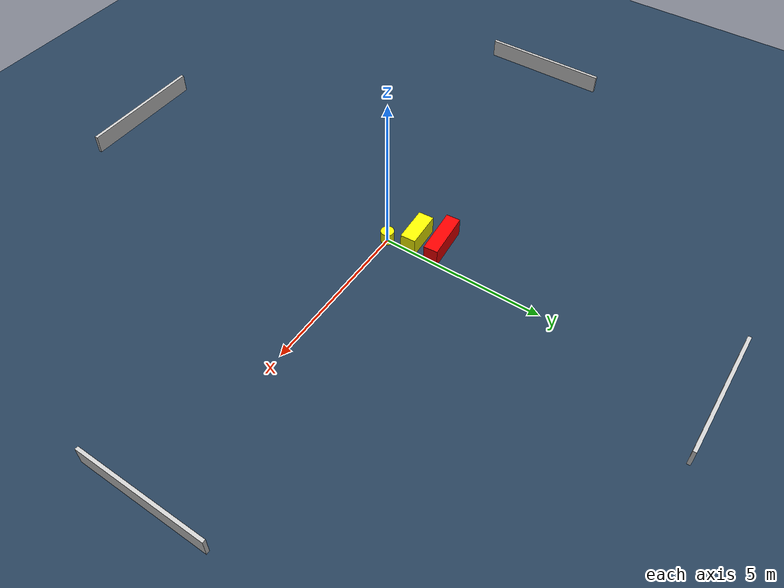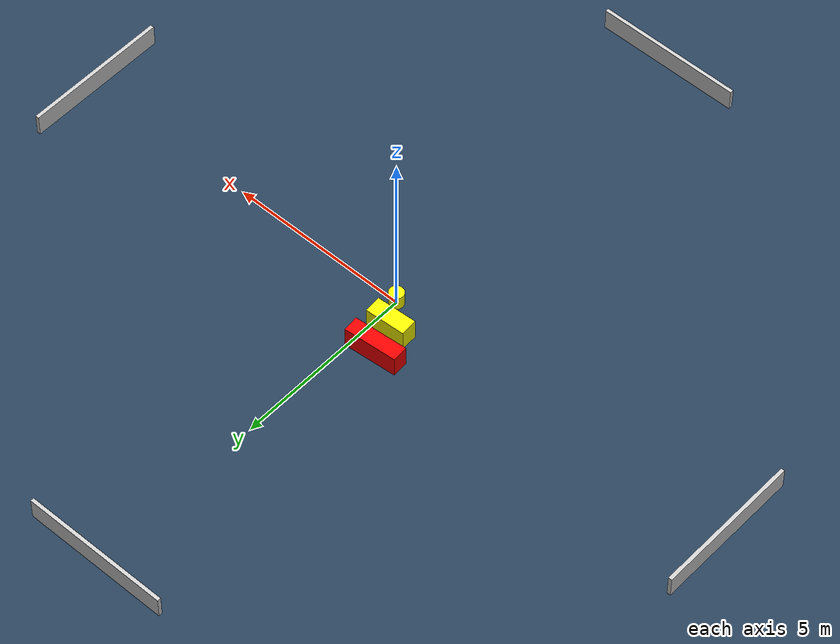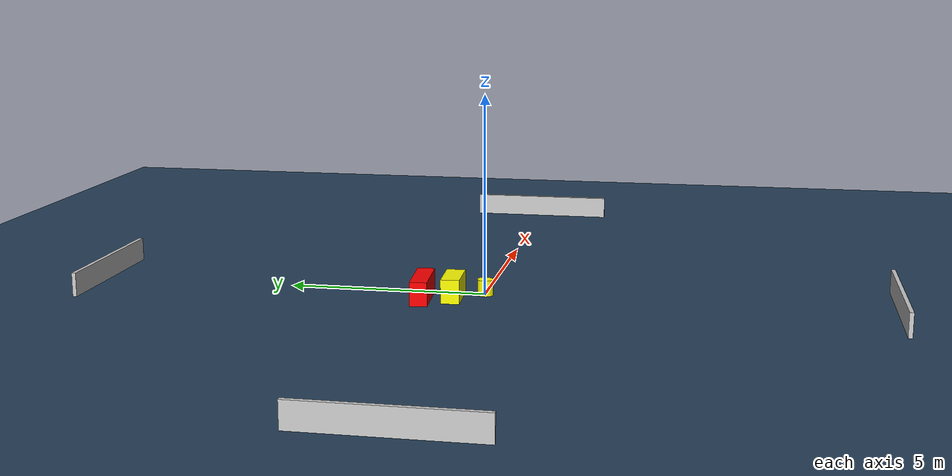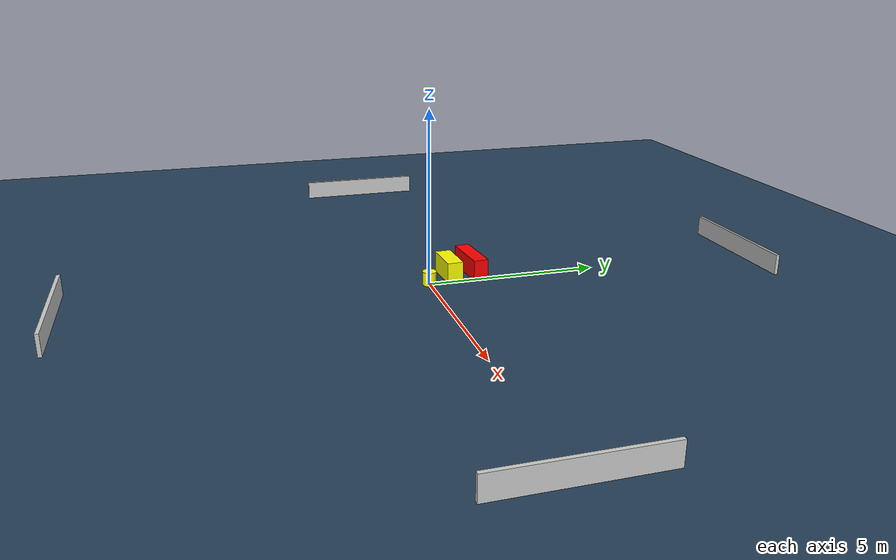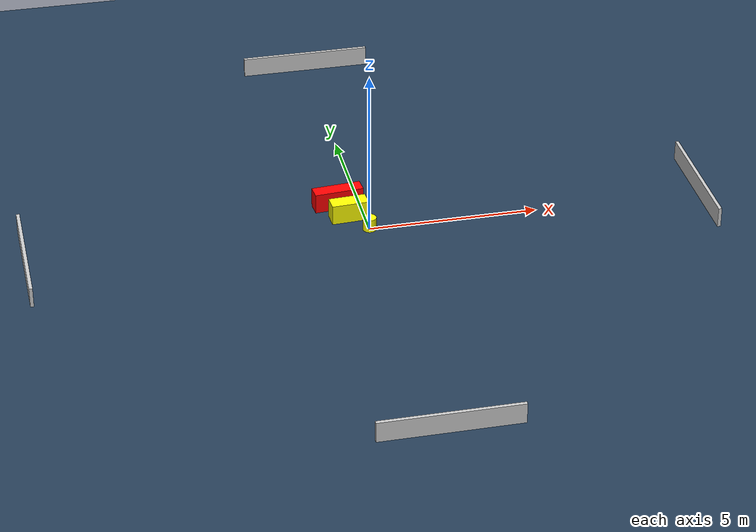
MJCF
<?xml version="1.0" ?>
<mujoco model="generated_environment">
  <option timestep="0.01" integrator="RK4" cone="elliptic"/>
  <default>
    <geom density="1"/>
  </default>
  <asset>
    <texture builtin="gradient" height="3072" name="skybox" rgb1="0.3 0.5 0.7" rgb2="0 0 0" type="skybox" width="512"/>
    <texture builtin="checker" height="300" name="groundplane" rgb1="0.2 0.3 0.4" rgb2="0.1 0.2 0.3" type="2d" width="300"/>
    <material name="groundplane" reflectance="0.2" texrepeat="5 5" texture="groundplane"/>
  </asset>
  <worldbody>
    <light dir="0 0 -1" directional="true" pos="0 0 1.5"/>
    <geom condim="3" friction="0.5 0.005 0.001" material="groundplane" name="floor" pos="0 0 0" size="0 0 0.05" type="plane"/>
    <body name="walls">
      <geom name="wall_1" condim="4" pos="-10.0 0.0 0.3" rgba="0.800000011920929 0.800000011920929 0.800000011920929 1.0" size="0.05 2.0 0.3" type="box"/>
      <geom name="wall_2" condim="4" pos="10.0 0.0 0.3" rgba="0.800000011920929 0.800000011920929 0.800000011920929 1.0" size="0.05 2.0 0.3" type="box"/>
      <geom name="wall_3" condim="4" pos="0.0 -10.0 0.3" rgba="0.800000011920929 0.800000011920929 0.800000011920929 1.0" size="2.0 0.05 0.3" type="box"/>
      <geom name="wall_4" condim="4" pos="0.0 10.0 0.3" rgba="0.800000011920929 0.800000011920929 0.800000011920929 1.0" size="2.0 0.05 0.3" type="box"/>
    </body>
    <body name="robot">
      <joint name="joint_x" type="slide" pos="0 0 0" axis="1 0 0"/>
      <joint name="joint_y" type="slide" pos="0 0 0" axis="0 1 0"/>
      <geom name="robot" type="cylinder" pos="0.0 0.0 0.2" size="0.2 0.2 0.0" mass="5.0" friction="1.0 0.005 0.0001" condim="4" rgba="1.0 1.0 0.0 1.0"/>
    </body>
    <body name="obstacle_1_movable">
      <geom name="obstacle_1_movable" condim="4" pos="-0.4716779839993688 0.7234338217313429 0.3" euler="0 0 273.1680025746703" friction="0.0 0.005 0.001" rgba="1.0 1.0 0.0 1.0" size="0.23320267178910445 0.5500625397642683 0.3" type="box" mass="0.1"/>
      <joint type="free"/>
    </body>
    <body name="obstacle_2_static">
      <geom name="obstacle_2_static" condim="4" pos="-0.655463963169924 1.461067099505104 0.3" euler="0 0 94.71225094431678" friction="0.0 0.005 0.001" rgba="1.0 0.0 0.0 1.0" size="0.21575177014447433 0.7325606020965678 0.3" type="box"/>
    </body>
  </worldbody>
  <actuator>
    <motor name="actuator_x" joint="joint_x" gear="1" ctrlrange="-1 1"/>
    <motor name="actuator_y" joint="joint_y" gear="1" ctrlrange="-1 1"/>
  </actuator>
</mujoco>
